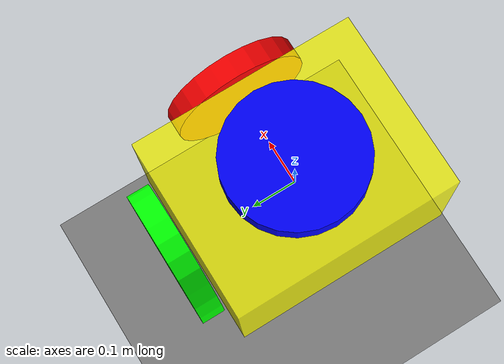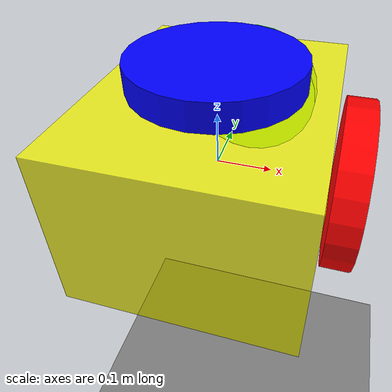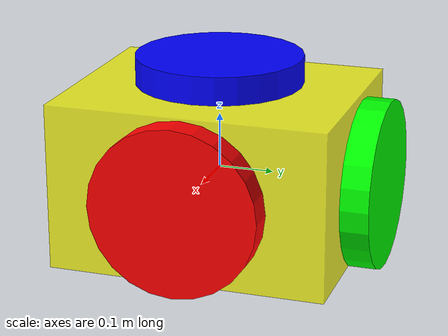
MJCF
<mujoco model="satellite">
    <option integrator="implicit" timestep="0.001" gravity="0 0 0"/>

    <worldbody>
        <light directional="true" diffuse=".8 .8 .8" specular=".2 .2 .2" pos="5 0 0" dir="-1 0 0"/>
        <light directional="true" diffuse=".8 .8 .8" specular=".2 .2 .2" pos="0 0 5" dir="0 0 -1"/>

        <geom name="floor" pos="0 0 -1" size="0 0 1" type="plane"/>

        <body name="main_body" pos="0 0 0">
            <freejoint/>
            <geom name="main_box" type="box" pos="0 0 0" size="0.2 0.25 0.15" rgba="1 1 0 0.8"/>

            <body name="flywheel1" pos="0.21 0 0">
                <joint name="j1" type="hinge" axis="1 0 0"/>
                <geom name="fw1" type="cylinder" fromto="0 0 0 0.05 0 0" size="0.15" rgba="1 0 0 1"/>
            </body>

            <body name="flywheel2" pos="0 0.26 0">
                <joint name="j2" type="hinge" axis="0 1 0"/>
                <geom name="fw2" type="cylinder" fromto="0 0 0 0 0.05 0" size="0.15" rgba="0 1 0 1"/>
             </body>

            <body name="flywheel3" pos="0 0 0.16">
                <joint name="j3" type="hinge" axis="0 0 1"/>
                <geom name="fw3" type="cylinder" fromto="0 0 0 0 0 0.05" size="0.15" rgba="0 0 1 1"/>
            </body>

        </body>
    </worldbody>

    <actuator>
        <motor name="m1" joint="j1"/>
        <motor name="m2" joint="j2"/>
        <motor name="m3" joint="j3"/>
    </actuator>

</mujoco>
